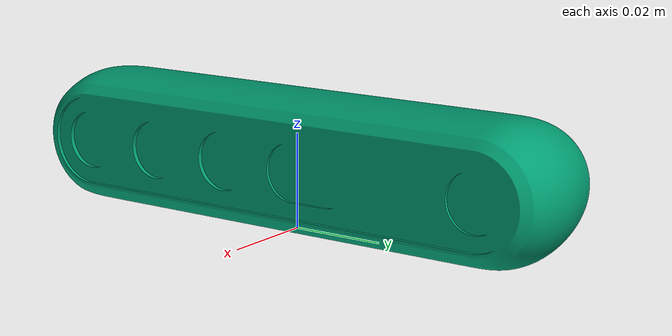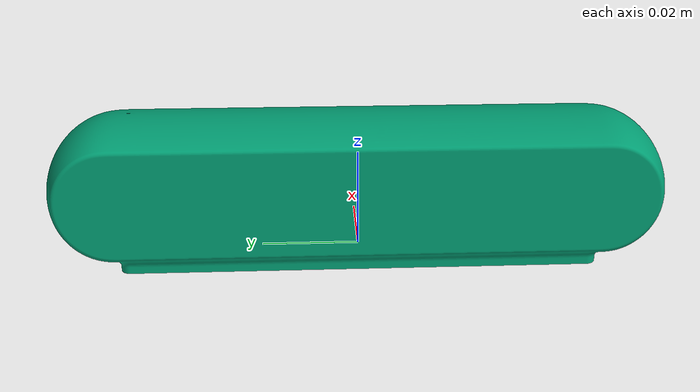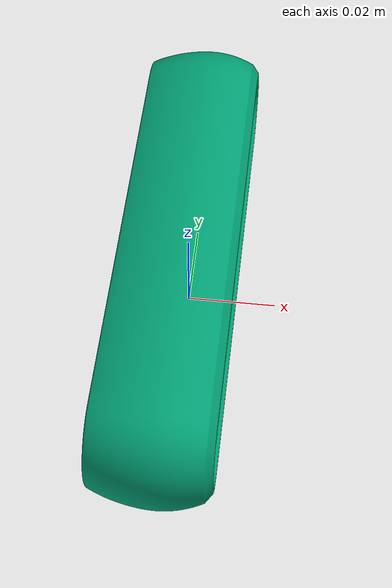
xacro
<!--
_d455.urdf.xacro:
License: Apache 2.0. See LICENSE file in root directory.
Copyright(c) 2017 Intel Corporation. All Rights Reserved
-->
<?xml version="1.0"?>
<robot name="realsense2_camera" xmlns:xacro="http://ros.org/wiki/xacro">
  <xacro:arg name="use_nominal_extrinsics" default="true"/>
  <xacro:include filename="$(find realsense2_description)/urdf/_d455.urdf.xacro" />

  <link name="d455_map" />
  <xacro:sensor_d455 name="camera" topics_ns="camera" parent="d455_map" use_nominal_extrinsics="$(arg use_nominal_extrinsics)">
    <origin xyz="0 0 0" rpy="0 0 0"/>
  </xacro:sensor_d455>
</robot>

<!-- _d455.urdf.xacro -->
<robot name="sensor_d455" xmlns:xacro="http://ros.org/wiki/xacro">
  <!-- Includes -->
  <xacro:include filename="$(find realsense2_description)/urdf/_materials.urdf.xacro" />
  <xacro:include filename="$(find realsense2_description)/urdf/_usb_plug.urdf.xacro" />
  <xacro:include filename="$(find realsense2_description)/urdf/_d455.gazebo.xacro" />

  <xacro:macro name="sensor_d455" params="parent *origin name:=camera topics_ns:=camera use_nominal_extrinsics:=true publish_pointcloud:=true">
    <xacro:arg name="add_plug" default="false" />
    <xacro:property name="M_PI" value="3.1415926535897931" />

    <!-- The following values are approximate, and the camera node
     publishing TF values with actual calibrated camera extrinsic values -->
    <xacro:property name="d455_cam_depth_to_infra1_offset" value="0.0"/>
    <xacro:property name="d455_cam_depth_to_infra2_offset" value="-0.095"/>
    <xacro:property name="d455_cam_depth_to_color_offset" value="-0.059"/>

    <!-- see datasheet Revision 009, Fig. 4-4 page 68 -->
    <xacro:property name="d455_zero_depth_to_glass" value="4.55e-3"/>

    <!-- The following values model the aluminum peripherial case for the
  	d455 camera, with the camera joint represented by the actual
  	peripherial camera tripod mount -->
    <xacro:property name="d455_cam_width" value="0.124"/>
    <xacro:property name="d455_cam_height" value="0.029"/>
    <xacro:property name="d455_cam_depth" value="0.026"/>
    <xacro:property name="d455_cam_mount_to_front" value="0.0158"/>
    <xacro:property name="d455_cam_mount_from_center_offset" value="${d455_cam_mount_to_front-d455_zero_depth_to_glass}"/>

    <!-- The following offset is relative the the physical d455 camera peripherial
  	camera tripod mount -->
    <xacro:property name="d455_cam_depth_px" value="${d455_cam_mount_from_center_offset}"/>
    <xacro:property name="d455_cam_depth_py" value="0.0475"/>
    <xacro:property name="d455_cam_depth_pz" value="${d455_cam_height/2}"/>

    <!-- camera body, with origin at bottom screw mount -->
    <joint name="${name}_joint" type="fixed">
      <xacro:insert_block name="origin" />
      <parent link="${parent}"/>
      <child link="${name}_bottom_screw_frame" />
    </joint>
    <link name="${name}_bottom_screw_frame"/>

    <joint name="${name}_link_joint" type="fixed">
      <origin xyz="${d455_cam_depth_px} ${d455_cam_depth_py} ${d455_cam_depth_pz}" rpy="0 0 0"/>
      <parent link="${name}_bottom_screw_frame"/>
      <child link="${name}_link" />
    </joint>

    <link name="${name}_link">
      <visual>
        <!-- the mesh origin is at front plate in between the two infrared camera axes -->
        <origin xyz="${0} ${-d455_cam_depth_py} 0" rpy="${M_PI/2} 0 ${M_PI/2}"/>
        <geometry>
	        <mesh filename="package://realsense2_description/meshes/d455.stl" scale="0.001 0.001 0.001" />
        </geometry>
        <material name="aluminum"/>
      </visual>
      <collision>
        <origin xyz="${d455_zero_depth_to_glass-d455_cam_depth/2} ${-d455_cam_depth_py} 0" rpy="0 0 0"/>
        <geometry>
          <box size="${d455_cam_depth} ${d455_cam_width} ${d455_cam_height}"/>
        </geometry>
      </collision>
      <inertial>
        <!-- The following are not reliable values, and should not be used for modeling -->
        <mass value="0.072" />
        <origin xyz="0 0 0" />
        <inertia ixx="0.003881243" ixy="0.0" ixz="0.0" iyy="0.000498940" iyz="0.0" izz="0.003879257" />
      </inertial>
    </link>

    <!-- Use the nominal extrinsics between camera frames if the calibrated extrinsics aren't being published. e.g. running the device in simulation  -->
    <xacro:if value="${use_nominal_extrinsics}">
      <!-- camera depth joints and links -->
      <joint name="${name}_depth_joint" type="fixed">
        <origin xyz="0 0 0" rpy="0 0 0"/>
        <parent link="${name}_link"/>
        <child link="${name}_depth_frame" />
      </joint>
      <link name="${name}_depth_frame"/>

      <joint name="${name}_depth_optical_joint" type="fixed">
        <origin xyz="0 0 0" rpy="${-M_PI/2} 0 ${-M_PI/2}" />
        <parent link="${name}_depth_frame" />
        <child link="${name}_depth_optical_frame" />
      </joint>
      <link name="${name}_depth_optical_frame"/>

      <!-- camera left IR joints and links -->
      <joint name="${name}_infra1_joint" type="fixed">
        <origin xyz="0 ${d455_cam_depth_to_infra1_offset} 0" rpy="0 0 0" />
        <parent link="${name}_link" />
        <child link="${name}_infra1_frame" />
      </joint>
      <link name="${name}_infra1_frame"/>

      <joint name="${name}_infra1_optical_joint" type="fixed">
        <origin xyz="0 0 0" rpy="${-M_PI/2} 0 ${-M_PI/2}" />
        <parent link="${name}_infra1_frame" />
        <child link="${name}_infra1_optical_frame" />
      </joint>
      <link name="${name}_infra1_optical_frame"/>

      <!-- camera right IR joints and links -->
      <joint name="${name}_infra2_joint" type="fixed">
        <origin xyz="0 ${d455_cam_depth_to_infra2_offset} 0" rpy="0 0 0" />
        <parent link="${name}_link" />
        <child link="${name}_infra2_frame" />
      </joint>
      <link name="${name}_infra2_frame"/>

      <joint name="${name}_infra2_optical_joint" type="fixed">
        <origin xyz="0 0 0" rpy="${-M_PI/2} 0 ${-M_PI/2}" />
        <parent link="${name}_infra2_frame" />
        <child link="${name}_infra2_optical_frame" />
      </joint>
      <link name="${name}_infra2_optical_frame"/>

      <!-- camera color joints and links -->
      <joint name="${name}_color_joint" type="fixed">
        <origin xyz="0 ${d455_cam_depth_to_color_offset} 0" rpy="0 0 0" />
        <parent link="${name}_link" />
        <child link="${name}_color_frame" />
      </joint>
      <link name="${name}_color_frame"/>

      <joint name="${name}_color_optical_joint" type="fixed">
        <origin xyz="0 0 0" rpy="${-M_PI/2} 0 ${-M_PI/2}" />
        <parent link="${name}_color_frame" />
        <child link="${name}_color_optical_frame" />
      </joint>
      <link name="${name}_color_optical_frame"/>

      <!-- IMU -->
      <!-- see datasheet Revision 009, page 114 -->
      <xacro:property name="d455_imu_px" value="-0.01602"/>
      <xacro:property name="d455_imu_py" value="-0.03022"/>
      <xacro:property name="d455_imu_pz" value="+0.0074"/>

      <link name="${name}_accel_frame" />
      <link name="${name}_accel_optical_frame" />
      <link name="${name}_gyro_frame" />
      <link name="${name}_gyro_optical_frame" />

      <joint name="${name}_accel_joint" type="fixed">
        <origin xyz = "${d455_imu_px} ${d455_imu_py} ${d455_imu_pz}" rpy = "0 0 0" />
        <parent link="${name}_link" />
        <child link="${name}_accel_frame" />
      </joint>

      <joint name="${name}_accel_optical_joint" type="fixed">
        <origin xyz = "0 0 0" rpy = "${-M_PI/2} 0 ${-M_PI/2}" />
        <parent link="${name}_accel_frame" />
        <child link="${name}_accel_optical_frame" />
      </joint>

      <joint name="${name}_gyro_joint" type="fixed">
        <origin xyz = "${d455_imu_px} ${d455_imu_py} ${d455_imu_pz}" rpy = "0 0 0" />
        <parent link="${name}_link" />
        <child link="${name}_gyro_frame" />
      </joint>

      <joint name="${name}_gyro_optical_joint" type="fixed">
        <origin xyz = "0 0 0" rpy = "${-M_PI/2} 0 ${-M_PI/2}" />
        <parent link="${name}_gyro_frame" />
        <child link="${name}_gyro_optical_frame" />
      </joint>
    </xacro:if>

    <xacro:if value="$(arg add_plug)">
      <xacro:usb_plug parent="${name}_link" name="${name}_usb_plug">
        <origin xyz="${-0.00406-d455_cam_depth_px} ${-0.03701-d455_cam_depth_py} ${-d455_cam_depth_pz}" rpy="${M_PI/2} 0 0"/>
      </xacro:usb_plug>
    </xacro:if>

    <!-- Realsense Gazebo Plugin -->
    <xacro:gazebo_d455 camera_name="${name}" reference_link="${name}_link" topics_ns="${topics_ns}" depth_optical_frame="${name}_depth_optical_frame" color_optical_frame="${name}_color_optical_frame" infrared1_optical_frame="${name}_left_ir_optical_frame" infrared2_optical_frame="${name}_right_ir_optical_frame" publish_pointcloud="${publish_pointcloud}"/>

  </xacro:macro>
</robot>
